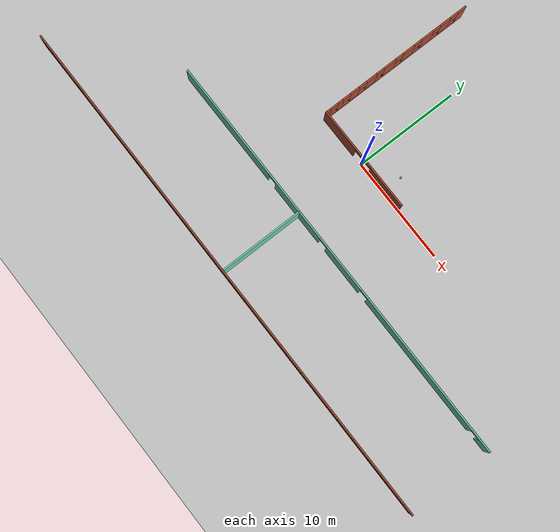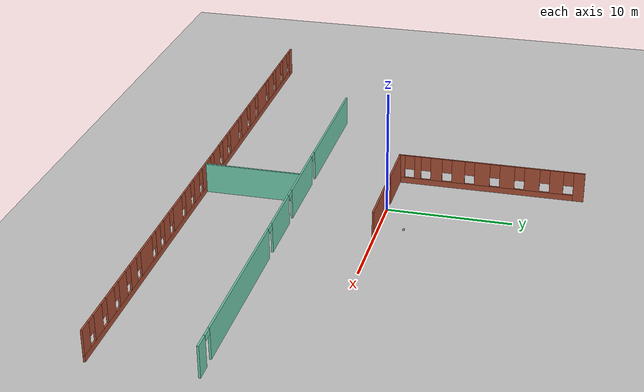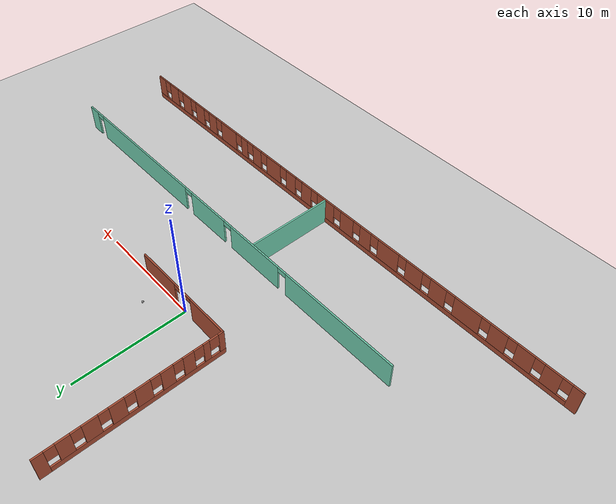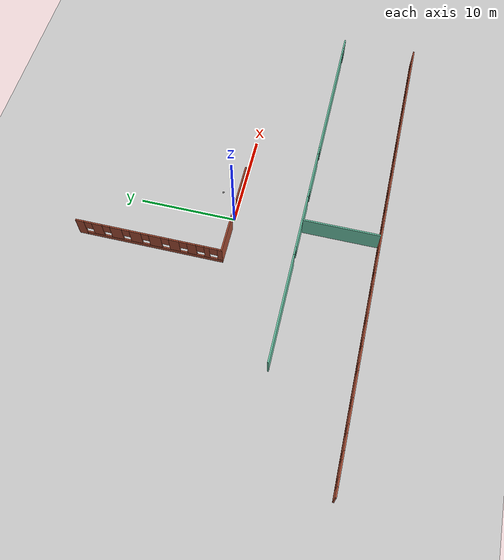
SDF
<sdf version="1.7">
 <world name="default">
  <model name="ground_plane">
   <static>1</static>
   <link name="link">
    <collision name="collision">
     <geometry><plane><normal>0 0 1</normal><size>100 100</size></plane></geometry>
     <surface><friction><ode><mu>100</mu><mu2>50</mu2></ode></friction></surface>
    </collision>
    <visual name="visual">
     <cast_shadows>0</cast_shadows>
     <geometry><plane><normal>0 0 1</normal><size>100 100</size></plane></geometry>
     <material>
      <script><uri>file://media/materials/scripts/gazebo.material</uri><name>Gazebo/Grey</name></script>
     </material>
    </visual>
   </link>
  </model>
  <model name="office">
   <link name="Wall_12">
    <pose>-5 7.5 0 0 -0 -1.5708</pose>
    <visual name="Wall_12_Visual_0">
     <pose>-7.13632 0 1.25 0 -0 0</pose>
     <geometry><box><size>0.877356 0.15 2.5</size></box></geometry>
     <material>
      <script><uri>file://media/materials/scripts/gazebo.material</uri><name>Gazebo/Bricks</name></script>
      <ambient>1 1 1 1</ambient>
     </material>
     <meta><layer>0</layer></meta>
    </visual>
    <collision name="Wall_12_Collision_0">
     <geometry><box><size>0.877356 0.15 2.5</size></box></geometry>
     <pose>-7.13632 0 1.25 0 -0 0</pose>
    </collision>
    <visual name="Wall_12_Visual_1">
     <pose>0.438678 0 0.25 0 -0 0</pose>
     <geometry><box><size>14.2726 0.15 0.5</size></box></geometry>
     <material>
      <script><uri>file://media/materials/scripts/gazebo.material</uri><name>Gazebo/Bricks</name></script>
      <ambient>1 1 1 1</ambient>
     </material>
     <meta><layer>0</layer></meta>
    </visual>
    <collision name="Wall_12_Collision_1">
     <geometry><box><size>14.2726 0.15 0.5</size></box></geometry>
     <pose>0.438678 0 0.25 0 -0 0</pose>
    </collision>
    <visual name="Wall_12_Visual_2">
     <pose>-5.34792 0 1.5 0 -0 0</pose>
     <geometry><box><size>1.09946 0.15 2</size></box></geometry>
     <material>
      <script><uri>file://media/materials/scripts/gazebo.material</uri><name>Gazebo/Bricks</name></script>
      <ambient>1 1 1 1</ambient>
     </material>
     <meta><layer>0</layer></meta>
    </visual>
    <collision name="Wall_12_Collision_2">
     <geometry><box><size>1.09946 0.15 2</size></box></geometry>
     <pose>-5.34792 0 1.5 0 -0 0</pose>
    </collision>
    <visual name="Wall_12_Visual_3">
     <pose>-3.37974 0 1.5 0 -0 0</pose>
     <geometry><box><size>1.2369 0.15 2</size></box></geometry>
     <material>
      <script><uri>file://media/materials/scripts/gazebo.material</uri><name>Gazebo/Bricks</name></script>
      <ambient>1 1 1 1</ambient>
     </material>
     <meta><layer>0</layer></meta>
    </visual>
    <collision name="Wall_12_Collision_3">
     <geometry><box><size>1.2369 0.15 2</size></box></geometry>
     <pose>-3.37974 0 1.5 0 -0 0</pose>
    </collision>
    <visual name="Wall_12_Visual_4">
     <pose>-1.35847 0 1.5 0 -0 0</pose>
     <geometry><box><size>1.20564 0.15 2</size></box></geometry>
     <material>
      <script><uri>file://media/materials/scripts/gazebo.material</uri><name>Gazebo/Bricks</name></script>
      <ambient>1 1 1 1</ambient>
     </material>
     <meta><layer>0</layer></meta>
    </visual>
    <collision name="Wall_12_Collision_4">
     <geometry><box><size>1.20564 0.15 2</size></box></geometry>
     <pose>-1.35847 0 1.5 0 -0 0</pose>
    </collision>
    <visual name="Wall_12_Visual_5">
     <pose>0.676661 0 1.5 0 -0 0</pose>
     <geometry><box><size>1.26463 0.15 2</size></box></geometry>
     <material>
      <script><uri>file://media/materials/scripts/gazebo.material</uri><name>Gazebo/Bricks</name></script>
      <ambient>1 1 1 1</ambient>
     </material>
     <meta><layer>0</layer></meta>
    </visual>
    <collision name="Wall_12_Collision_5">
     <geometry><box><size>1.26463 0.15 2</size></box></geometry>
     <pose>0.676661 0 1.5 0 -0 0</pose>
    </collision>
    <visual name="Wall_12_Visual_6">
     <pose>2.64221 0 1.5 0 -0 0</pose>
     <geometry><box><size>1.06646 0.15 2</size></box></geometry>
     <material>
      <script><uri>file://media/materials/scripts/gazebo.material</uri><name>Gazebo/Bricks</name></script>
      <ambient>1 1 1 1</ambient>
     </material>
     <meta><layer>0</layer></meta>
    </visual>
    <collision name="Wall_12_Collision_6">
     <geometry><box><size>1.06646 0.15 2</size></box></geometry>
     <pose>2.64221 0 1.5 0 -0 0</pose>
    </collision>
    <visual name="Wall_12_Visual_7">
     <pose>4.44911 0 1.5 0 -0 0</pose>
     <geometry><box><size>0.947358 0.15 2</size></box></geometry>
     <material>
      <script><uri>file://media/materials/scripts/gazebo.material</uri><name>Gazebo/Bricks</name></script>
      <ambient>1 1 1 1</ambient>
     </material>
     <meta><layer>0</layer></meta>
    </visual>
    <collision name="Wall_12_Collision_7">
     <geometry><box><size>0.947358 0.15 2</size></box></geometry>
     <pose>4.44911 0 1.5 0 -0 0</pose>
    </collision>
    <visual name="Wall_12_Visual_8">
     <pose>5.99734 0 1.5 0 -0 0</pose>
     <geometry><box><size>0.549094 0.15 2</size></box></geometry>
     <material>
      <script><uri>file://media/materials/scripts/gazebo.material</uri><name>Gazebo/Bricks</name></script>
      <ambient>1 1 1 1</ambient>
     </material>
     <meta><layer>0</layer></meta>
    </visual>
    <collision name="Wall_12_Collision_8">
     <geometry><box><size>0.549094 0.15 2</size></box></geometry>
     <pose>5.99734 0 1.5 0 -0 0</pose>
    </collision>
    <visual name="Wall_12_Visual_9">
     <pose>7.32344 0 1.5 0 -0 0</pose>
     <geometry><box><size>0.503112 0.15 2</size></box></geometry>
     <material>
      <script><uri>file://media/materials/scripts/gazebo.material</uri><name>Gazebo/Bricks</name></script>
      <ambient>1 1 1 1</ambient>
     </material>
     <meta><layer>0</layer></meta>
    </visual>
    <collision name="Wall_12_Collision_9">
     <geometry><box><size>0.503112 0.15 2</size></box></geometry>
     <pose>7.32344 0 1.5 0 -0 0</pose>
    </collision>
    <visual name="Wall_12_Visual_10">
     <pose>-6.29764 0 1.9 0 -0 0</pose>
     <geometry><box><size>0.8 0.15 1.2</size></box></geometry>
     <material>
      <script><uri>file://media/materials/scripts/gazebo.material</uri><name>Gazebo/Bricks</name></script>
      <ambient>1 1 1 1</ambient>
     </material>
     <meta><layer>0</layer></meta>
    </visual>
    <collision name="Wall_12_Collision_10">
     <geometry><box><size>0.8 0.15 1.2</size></box></geometry>
     <pose>-6.29764 0 1.9 0 -0 0</pose>
    </collision>
    <visual name="Wall_12_Visual_11">
     <pose>-4.39819 0 1.9 0 -0 0</pose>
     <geometry><box><size>0.8 0.15 1.2</size></box></geometry>
     <material>
      <script><uri>file://media/materials/scripts/gazebo.material</uri><name>Gazebo/Bricks</name></script>
      <ambient>1 1 1 1</ambient>
     </material>
     <meta><layer>0</layer></meta>
    </visual>
    <collision name="Wall_12_Collision_11">
     <geometry><box><size>0.8 0.15 1.2</size></box></geometry>
     <pose>-4.39819 0 1.9 0 -0 0</pose>
    </collision>
    <visual name="Wall_12_Visual_12">
     <pose>-2.36129 0 1.9 0 -0 0</pose>
     <geometry><box><size>0.8 0.15 1.2</size></box></geometry>
     <material>
      <script><uri>file://media/materials/scripts/gazebo.material</uri><name>Gazebo/Bricks</name></script>
      <ambient>1 1 1 1</ambient>
     </material>
     <meta><layer>0</layer></meta>
    </visual>
    <collision name="Wall_12_Collision_12">
     <geometry><box><size>0.8 0.15 1.2</size></box></geometry>
     <pose>-2.36129 0 1.9 0 -0 0</pose>
    </collision>
    <visual name="Wall_12_Visual_13">
     <pose>-0.355653 0 1.9 0 -0 0</pose>
     <geometry><box><size>0.8 0.15 1.2</size></box></geometry>
     <material>
      <script><uri>file://media/materials/scripts/gazebo.material</uri><name>Gazebo/Bricks</name></script>
      <ambient>1 1 1 1</ambient>
     </material>
     <meta><layer>0</layer></meta>
    </visual>
    <collision name="Wall_12_Collision_13">
     <geometry><box><size>0.8 0.15 1.2</size></box></geometry>
     <pose>-0.355653 0 1.9 0 -0 0</pose>
    </collision>
    <visual name="Wall_12_Visual_14">
     <pose>1.70897 0 1.9 0 -0 0</pose>
     <geometry><box><size>0.8 0.15 1.2</size></box></geometry>
     <material>
      <script><uri>file://media/materials/scripts/gazebo.material</uri><name>Gazebo/Bricks</name></script>
      <ambient>1 1 1 1</ambient>
     </material>
     <meta><layer>0</layer></meta>
    </visual>
    <collision name="Wall_12_Collision_14">
     <geometry><box><size>0.8 0.15 1.2</size></box></geometry>
     <pose>1.70897 0 1.9 0 -0 0</pose>
    </collision>
    <visual name="Wall_12_Visual_15">
     <pose>3.57544 0 1.9 0 -0 0</pose>
     <geometry><box><size>0.8 0.15 1.2</size></box></geometry>
     <material>
      <script><uri>file://media/materials/scripts/gazebo.material</uri><name>Gazebo/Bricks</name></script>
      <ambient>1 1 1 1</ambient>
     </material>
     <meta><layer>0</layer></meta>
    </visual>
    <collision name="Wall_12_Collision_15">
     <geometry><box><size>0.8 0.15 1.2</size></box></geometry>
     <pose>3.57544 0 1.9 0 -0 0</pose>
    </collision>
    <visual name="Wall_12_Visual_16">
     <pose>5.32279 0 1.9 0 -0 0</pose>
     <geometry><box><size>0.8 0.15 1.2</size></box></geometry>
     <material>
      <script><uri>file://media/materials/scripts/gazebo.material</uri><name>Gazebo/Bricks</name></script>
      <ambient>1 1 1 1</ambient>
     </material>
     <meta><layer>0</layer></meta>
    </visual>
    <collision name="Wall_12_Collision_16">
     <geometry><box><size>0.8 0.15 1.2</size></box></geometry>
     <pose>5.32279 0 1.9 0 -0 0</pose>
    </collision>
    <visual name="Wall_12_Visual_17">
     <pose>6.67189 0 1.9 0 -0 0</pose>
     <geometry><box><size>0.8 0.15 1.2</size></box></geometry>
     <material>
      <script><uri>file://media/materials/scripts/gazebo.material</uri><name>Gazebo/Bricks</name></script>
      <ambient>1 1 1 1</ambient>
     </material>
     <meta><layer>0</layer></meta>
    </visual>
    <collision name="Wall_12_Collision_17">
     <geometry><box><size>0.8 0.15 1.2</size></box></geometry>
     <pose>6.67189 0 1.9 0 -0 0</pose>
    </collision>
   </link>
   <link name="Wall_14">
    <visual name="Wall_14_Visual_0">
     <pose>-3.05414 0 1.25 0 -0 0</pose>
     <geometry><box><size>4.04172 0.15 2.5</size></box></geometry>
     <material>
      <script><uri>file://media/materials/scripts/gazebo.material</uri><name>Gazebo/Bricks</name></script>
      <ambient>1 1 1 1</ambient>
     </material>
     <meta><layer>0</layer></meta>
    </visual>
    <collision name="Wall_14_Collision_0">
     <geometry><box><size>4.04172 0.15 2.5</size></box></geometry>
     <pose>-3.05414 0 1.25 0 -0 0</pose>
    </collision>
    <visual name="Wall_14_Visual_1">
     <pose>3.02086 0 1.25 0 -0 0</pose>
     <geometry><box><size>4.10827 0.15 2.5</size></box></geometry>
     <material>
      <script><uri>file://media/materials/scripts/gazebo.material</uri><name>Gazebo/Bricks</name></script>
      <ambient>1 1 1 1</ambient>
     </material>
     <meta><layer>0</layer></meta>
    </visual>
    <collision name="Wall_14_Collision_1">
     <geometry><box><size>4.10827 0.15 2.5</size></box></geometry>
     <pose>3.02086 0 1.25 0 -0 0</pose>
    </collision>
    <visual name="Wall_14_Visual_2">
     <pose>-0.033275 0 2.25 0 -0 0</pose>
     <geometry><box><size>2 0.15 0.5</size></box></geometry>
     <material>
      <script><uri>file://media/materials/scripts/gazebo.material</uri><name>Gazebo/Bricks</name></script>
      <ambient>1 1 1 1</ambient>
     </material>
     <meta><layer>0</layer></meta>
    </visual>
    <collision name="Wall_14_Collision_2">
     <geometry><box><size>2 0.15 0.5</size></box></geometry>
     <pose>-0.033275 0 2.25 0 -0 0</pose>
    </collision>
   </link>
   <link name="Wall_2">
    <pose>0 -15 0 0 -0 0</pose>
    <visual name="Wall_2_Visual_0">
     <pose>-24.6249 0 1.25 0 -0 0</pose>
     <geometry><box><size>0.900286 0.15 2.5</size></box></geometry>
     <material>
      <script><uri>file://media/materials/scripts/gazebo.material</uri><name>Gazebo/Bricks</name></script>
      <ambient>1 1 1 1</ambient>
     </material>
     <meta><layer>0</layer></meta>
    </visual>
    <collision name="Wall_2_Collision_0">
     <geometry><box><size>0.900286 0.15 2.5</size></box></geometry>
     <pose>-24.6249 0 1.25 0 -0 0</pose>
    </collision>
    <visual name="Wall_2_Visual_1">
     <pose>0.450143 0 0.25 0 -0 0</pose>
     <geometry><box><size>49.2497 0.15 0.5</size></box></geometry>
     <material>
      <script><uri>file://media/materials/scripts/gazebo.material</uri><name>Gazebo/Bricks</name></script>
      <ambient>1 1 1 1</ambient>
     </material>
     <meta><layer>0</layer></meta>
    </visual>
    <collision name="Wall_2_Collision_1">
     <geometry><box><size>49.2497 0.15 0.5</size></box></geometry>
     <pose>0.450143 0 0.25 0 -0 0</pose>
    </collision>
    <visual name="Wall_2_Visual_2">
     <pose>-22.6554 0 1.5 0 -0 0</pose>
     <geometry><box><size>1.43865 0.15 2</size></box></geometry>
     <material>
      <script><uri>file://media/materials/scripts/gazebo.material</uri><name>Gazebo/Bricks</name></script>
      <ambient>1 1 1 1</ambient>
     </material>
     <meta><layer>0</layer></meta>
    </visual>
    <collision name="Wall_2_Collision_2">
     <geometry><box><size>1.43865 0.15 2</size></box></geometry>
     <pose>-22.6554 0 1.5 0 -0 0</pose>
    </collision>
    <visual name="Wall_2_Visual_3">
     <pose>-20.3828 0 1.5 0 -0 0</pose>
     <geometry><box><size>1.50648 0.15 2</size></box></geometry>
     <material>
      <script><uri>file://media/materials/scripts/gazebo.material</uri><name>Gazebo/Bricks</name></script>
      <ambient>1 1 1 1</ambient>
     </material>
     <meta><layer>0</layer></meta>
    </visual>
    <collision name="Wall_2_Collision_3">
     <geometry><box><size>1.50648 0.15 2</size></box></geometry>
     <pose>-20.3828 0 1.5 0 -0 0</pose>
    </collision>
    <visual name="Wall_2_Visual_4">
     <pose>-18.0424 0 1.5 0 -0 0</pose>
     <geometry><box><size>1.57432 0.15 2</size></box></geometry>
     <material>
      <script><uri>file://media/materials/scripts/gazebo.material</uri><name>Gazebo/Bricks</name></script>
      <ambient>1 1 1 1</ambient>
     </material>
     <meta><layer>0</layer></meta>
    </visual>
    <collision name="Wall_2_Collision_4">
     <geometry><box><size>1.57432 0.15 2</size></box></geometry>
     <pose>-18.0424 0 1.5 0 -0 0</pose>
    </collision>
    <visual name="Wall_2_Visual_5">
     <pose>-15.1932 0 1.5 0 -0 0</pose>
     <geometry><box><size>2.52405 0.15 2</size></box></geometry>
     <material>
      <script><uri>file://media/materials/scripts/gazebo.material</uri><name>Gazebo/Bricks</name></script>
      <ambient>1 1 1 1</ambient>
     </material>
     <meta><layer>0</layer></meta>
    </visual>
    <collision name="Wall_2_Collision_5">
     <geometry><box><size>2.52405 0.15 2</size></box></geometry>
     <pose>-15.1932 0 1.5 0 -0 0</pose>
    </collision>
    <visual name="Wall_2_Visual_6">
     <pose>-12.3441 0 1.5 0 -0 0</pose>
     <geometry><box><size>1.57432 0.15 2</size></box></geometry>
     <material>
      <script><uri>file://media/materials/scripts/gazebo.material</uri><name>Gazebo/Bricks</name></script>
      <ambient>1 1 1 1</ambient>
     </material>
     <meta><layer>0</layer></meta>
    </visual>
    <collision name="Wall_2_Collision_6">
     <geometry><box><size>1.57432 0.15 2</size></box></geometry>
     <pose>-12.3441 0 1.5 0 -0 0</pose>
    </collision>
    <visual name="Wall_2_Visual_7">
     <pose>-9.90189 0 1.5 0 -0 0</pose>
     <geometry><box><size>1.71 0.15 2</size></box></geometry>
     <material>
      <script><uri>file://media/materials/scripts/gazebo.material</uri><name>Gazebo/Bricks</name></script>
      <ambient>1 1 1 1</ambient>
     </material>
     <meta><layer>0</layer></meta>
    </visual>
    <collision name="Wall_2_Collision_7">
     <geometry><box><size>1.71 0.15 2</size></box></geometry>
     <pose>-9.90189 0 1.5 0 -0 0</pose>
    </collision>
    <visual name="Wall_2_Visual_8">
     <pose>-7.12054 0 1.5 0 -0 0</pose>
     <geometry><box><size>2.2527 0.15 2</size></box></geometry>
     <material>
      <script><uri>file://media/materials/scripts/gazebo.material</uri><name>Gazebo/Bricks</name></script>
      <ambient>1 1 1 1</ambient>
     </material>
     <meta><layer>0</layer></meta>
    </visual>
    <collision name="Wall_2_Collision_8">
     <geometry><box><size>2.2527 0.15 2</size></box></geometry>
     <pose>-7.12054 0 1.5 0 -0 0</pose>
    </collision>
    <visual name="Wall_2_Visual_9">
     <pose>-4.57663 0 1.5 0 -0 0</pose>
     <geometry><box><size>1.23513 0.15 2</size></box></geometry>
     <material>
      <script><uri>file://media/materials/scripts/gazebo.material</uri><name>Gazebo/Bricks</name></script>
      <ambient>1 1 1 1</ambient>
     </material>
     <meta><layer>0</layer></meta>
    </visual>
    <collision name="Wall_2_Collision_9">
     <geometry><box><size>1.23513 0.15 2</size></box></geometry>
     <pose>-4.57663 0 1.5 0 -0 0</pose>
    </collision>
    <visual name="Wall_2_Visual_10">
     <pose>-2.40582 0 1.5 0 -0 0</pose>
     <geometry><box><size>1.50648 0.15 2</size></box></geometry>
     <material>
      <script><uri>file://media/materials/scripts/gazebo.material</uri><name>Gazebo/Bricks</name></script>
      <ambient>1 1 1 1</ambient>
     </material>
     <meta><layer>0</layer></meta>
    </visual>
    <collision name="Wall_2_Collision_10">
     <geometry><box><size>1.50648 0.15 2</size></box></geometry>
     <pose>-2.40582 0 1.5 0 -0 0</pose>
    </collision>
    <visual name="Wall_2_Visual_11">
     <pose>0.172015 0 1.5 0 -0 0</pose>
     <geometry><box><size>2.04919 0.15 2</size></box></geometry>
     <material>
      <script><uri>file://media/materials/scripts/gazebo.material</uri><name>Gazebo/Bricks</name></script>
      <ambient>1 1 1 1</ambient>
     </material>
     <meta><layer>0</layer></meta>
    </visual>
    <collision name="Wall_2_Collision_11">
     <geometry><box><size>2.04919 0.15 2</size></box></geometry>
     <pose>0.172015 0 1.5 0 -0 0</pose>
    </collision>
    <visual name="Wall_2_Visual_12">
     <pose>2.61417 0 1.5 0 -0 0</pose>
     <geometry><box><size>1.23513 0.15 2</size></box></geometry>
     <material>
      <script><uri>file://media/materials/scripts/gazebo.material</uri><name>Gazebo/Bricks</name></script>
      <ambient>1 1 1 1</ambient>
     </material>
     <meta><layer>0</layer></meta>
    </visual>
    <collision name="Wall_2_Collision_12">
     <geometry><box><size>1.23513 0.15 2</size></box></geometry>
     <pose>2.61417 0 1.5 0 -0 0</pose>
    </collision>
    <visual name="Wall_2_Visual_13">
     <pose>4.64931 0 1.5 0 -0 0</pose>
     <geometry><box><size>1.23513 0.15 2</size></box></geometry>
     <material>
      <script><uri>file://media/materials/scripts/gazebo.material</uri><name>Gazebo/Bricks</name></script>
      <ambient>1 1 1 1</ambient>
     </material>
     <meta><layer>0</layer></meta>
    </visual>
    <collision name="Wall_2_Collision_13">
     <geometry><box><size>1.23513 0.15 2</size></box></geometry>
     <pose>4.64931 0 1.5 0 -0 0</pose>
    </collision>
    <visual name="Wall_2_Visual_14">
     <pose>7.02363 0 1.5 0 -0 0</pose>
     <geometry><box><size>1.91351 0.15 2</size></box></geometry>
     <material>
      <script><uri>file://media/materials/scripts/gazebo.material</uri><name>Gazebo/Bricks</name></script>
      <ambient>1 1 1 1</ambient>
     </material>
     <meta><layer>0</layer></meta>
    </visual>
    <collision name="Wall_2_Collision_14">
     <geometry><box><size>1.91351 0.15 2</size></box></geometry>
     <pose>7.02363 0 1.5 0 -0 0</pose>
    </collision>
    <visual name="Wall_2_Visual_15">
     <pose>9.36403 0 1.5 0 -0 0</pose>
     <geometry><box><size>1.16729 0.15 2</size></box></geometry>
     <material>
      <script><uri>file://media/materials/scripts/gazebo.material</uri><name>Gazebo/Bricks</name></script>
      <ambient>1 1 1 1</ambient>
     </material>
     <meta><layer>0</layer></meta>
    </visual>
    <collision name="Wall_2_Collision_15">
     <geometry><box><size>1.16729 0.15 2</size></box></geometry>
     <pose>9.36403 0 1.5 0 -0 0</pose>
    </collision>
    <visual name="Wall_2_Visual_16">
     <pose>11.1957 0 1.5 0 -0 0</pose>
     <geometry><box><size>0.895944 0.15 2</size></box></geometry>
     <material>
      <script><uri>file://media/materials/scripts/gazebo.material</uri><name>Gazebo/Bricks</name></script>
      <ambient>1 1 1 1</ambient>
     </material>
     <meta><layer>0</layer></meta>
    </visual>
    <collision name="Wall_2_Collision_16">
     <geometry><box><size>0.895944 0.15 2</size></box></geometry>
     <pose>11.1957 0 1.5 0 -0 0</pose>
    </collision>
    <visual name="Wall_2_Visual_17">
     <pose>13.57 0 1.5 0 -0 0</pose>
     <geometry><box><size>2.2527 0.15 2</size></box></geometry>
     <material>
      <script><uri>file://media/materials/scripts/gazebo.material</uri><name>Gazebo/Bricks</name></script>
      <ambient>1 1 1 1</ambient>
     </material>
     <meta><layer>0</layer></meta>
    </visual>
    <collision name="Wall_2_Collision_17">
     <geometry><box><size>2.2527 0.15 2</size></box></geometry>
     <pose>13.57 0 1.5 0 -0 0</pose>
    </collision>
    <visual name="Wall_2_Visual_18">
     <pose>16.08 0 1.5 0 -0 0</pose>
     <geometry><box><size>1.16729 0.15 2</size></box></geometry>
     <material>
      <script><uri>file://media/materials/scripts/gazebo.material</uri><name>Gazebo/Bricks</name></script>
      <ambient>1 1 1 1</ambient>
     </material>
     <meta><layer>0</layer></meta>
    </visual>
    <collision name="Wall_2_Collision_18">
     <geometry><box><size>1.16729 0.15 2</size></box></geometry>
     <pose>16.08 0 1.5 0 -0 0</pose>
    </collision>
    <visual name="Wall_2_Visual_19">
     <pose>18.149 0 1.5 0 -0 0</pose>
     <geometry><box><size>1.37081 0.15 2</size></box></geometry>
     <material>
      <script><uri>file://media/materials/scripts/gazebo.material</uri><name>Gazebo/Bricks</name></script>
      <ambient>1 1 1 1</ambient>
     </material>
     <meta><layer>0</layer></meta>
    </visual>
    <collision name="Wall_2_Collision_19">
     <geometry><box><size>1.37081 0.15 2</size></box></geometry>
     <pose>18.149 0 1.5 0 -0 0</pose>
    </collision>
    <visual name="Wall_2_Visual_20">
     <pose>20.3198 0 1.5 0 -0 0</pose>
     <geometry><box><size>1.37081 0.15 2</size></box></geometry>
     <material>
      <script><uri>file://media/materials/scripts/gazebo.material</uri><name>Gazebo/Bricks</name></script>
      <ambient>1 1 1 1</ambient>
     </material>
     <meta><layer>0</layer></meta>
    </visual>
    <collision name="Wall_2_Collision_20">
     <geometry><box><size>1.37081 0.15 2</size></box></geometry>
     <pose>20.3198 0 1.5 0 -0 0</pose>
    </collision>
    <visual name="Wall_2_Visual_21">
     <pose>22.4906 0 1.5 0 -0 0</pose>
     <geometry><box><size>1.37081 0.15 2</size></box></geometry>
     <material>
      <script><uri>file://media/materials/scripts/gazebo.material</uri><name>Gazebo/Bricks</name></script>
      <ambient>1 1 1 1</ambient>
     </material>
     <meta><layer>0</layer></meta>
    </visual>
    <collision name="Wall_2_Collision_21">
     <geometry><box><size>1.37081 0.15 2</size></box></geometry>
     <pose>22.4906 0 1.5 0 -0 0</pose>
    </collision>
    <visual name="Wall_2_Visual_22">
     <pose>24.5255 0 1.5 0 -0 0</pose>
     <geometry><box><size>1.09896 0.15 2</size></box></geometry>
     <material>
      <script><uri>file://media/materials/scripts/gazebo.material</uri><name>Gazebo/Bricks</name></script>
      <ambient>1 1 1 1</ambient>
     </material>
     <meta><layer>0</layer></meta>
    </visual>
    <collision name="Wall_2_Collision_22">
     <geometry><box><size>1.09896 0.15 2</size></box></geometry>
     <pose>24.5255 0 1.5 0 -0 0</pose>
    </collision>
    <visual name="Wall_2_Visual_23">
     <pose>-23.7747 0 1.9 0 -0 0</pose>
     <geometry><box><size>0.8 0.15 1.2</size></box></geometry>
     <material>
      <script><uri>file://media/materials/scripts/gazebo.material</uri><name>Gazebo/Bricks</name></script>
      <ambient>1 1 1 1</ambient>
     </material>
     <meta><layer>0</layer></meta>
    </visual>
    <collision name="Wall_2_Collision_23">
     <geometry><box><size>0.8 0.15 1.2</size></box></geometry>
     <pose>-23.7747 0 1.9 0 -0 0</pose>
    </collision>
    <visual name="Wall_2_Visual_24">
     <pose>-21.5361 0 1.9 0 -0 0</pose>
     <geometry><box><size>0.8 0.15 1.2</size></box></geometry>
     <material>
      <script><uri>file://media/materials/scripts/gazebo.material</uri><name>Gazebo/Bricks</name></script>
      <ambient>1 1 1 1</ambient>
     </material>
     <meta><layer>0</layer></meta>
    </visual>
    <collision name="Wall_2_Collision_24">
     <geometry><box><size>0.8 0.15 1.2</size></box></geometry>
     <pose>-21.5361 0 1.9 0 -0 0</pose>
    </collision>
    <visual name="Wall_2_Visual_25">
     <pose>-19.2296 0 1.9 0 -0 0</pose>
     <geometry><box><size>0.8 0.15 1.2</size></box></geometry>
     <material>
      <script><uri>file://media/materials/scripts/gazebo.material</uri><name>Gazebo/Bricks</name></script>
      <ambient>1 1 1 1</ambient>
     </material>
     <meta><layer>0</layer></meta>
    </visual>
    <collision name="Wall_2_Collision_25">
     <geometry><box><size>0.8 0.15 1.2</size></box></geometry>
     <pose>-19.2296 0 1.9 0 -0 0</pose>
    </collision>
    <visual name="Wall_2_Visual_26">
     <pose>-16.8553 0 1.9 0 -0 0</pose>
     <geometry><box><size>0.8 0.15 1.2</size></box></geometry>
     <material>
      <script><uri>file://media/materials/scripts/gazebo.material</uri><name>Gazebo/Bricks</name></script>
      <ambient>1 1 1 1</ambient>
     </material>
     <meta><layer>0</layer></meta>
    </visual>
    <collision name="Wall_2_Collision_26">
     <geometry><box><size>0.8 0.15 1.2</size></box></geometry>
     <pose>-16.8553 0 1.9 0 -0 0</pose>
    </collision>
    <visual name="Wall_2_Visual_27">
     <pose>-13.5312 0 1.9 0 -0 0</pose>
     <geometry><box><size>0.8 0.15 1.2</size></box></geometry>
     <material>
      <script><uri>file://media/materials/scripts/gazebo.material</uri><name>Gazebo/Bricks</name></script>
      <ambient>1 1 1 1</ambient>
     </material>
     <meta><layer>0</layer></meta>
    </visual>
    <collision name="Wall_2_Collision_27">
     <geometry><box><size>0.8 0.15 1.2</size></box></geometry>
     <pose>-13.5312 0 1.9 0 -0 0</pose>
    </collision>
    <visual name="Wall_2_Visual_28">
     <pose>-11.1569 0 1.9 0 -0 0</pose>
     <geometry><box><size>0.8 0.15 1.2</size></box></geometry>
     <material>
      <script><uri>file://media/materials/scripts/gazebo.material</uri><name>Gazebo/Bricks</name></script>
      <ambient>1 1 1 1</ambient>
     </material>
     <meta><layer>0</layer></meta>
    </visual>
    <collision name="Wall_2_Collision_28">
     <geometry><box><size>0.8 0.15 1.2</size></box></geometry>
     <pose>-11.1569 0 1.9 0 -0 0</pose>
    </collision>
    <visual name="Wall_2_Visual_29">
     <pose>-8.64689 0 1.9 0 -0 0</pose>
     <geometry><box><size>0.8 0.15 1.2</size></box></geometry>
     <material>
      <script><uri>file://media/materials/scripts/gazebo.material</uri><name>Gazebo/Bricks</name></script>
      <ambient>1 1 1 1</ambient>
     </material>
     <meta><layer>0</layer></meta>
    </visual>
    <collision name="Wall_2_Collision_29">
     <geometry><box><size>0.8 0.15 1.2</size></box></geometry>
     <pose>-8.64689 0 1.9 0 -0 0</pose>
    </collision>
    <visual name="Wall_2_Visual_30">
     <pose>-5.59419 0 1.9 0 -0 0</pose>
     <geometry><box><size>0.8 0.15 1.2</size></box></geometry>
     <material>
      <script><uri>file://media/materials/scripts/gazebo.material</uri><name>Gazebo/Bricks</name></script>
      <ambient>1 1 1 1</ambient>
     </material>
     <meta><layer>0</layer></meta>
    </visual>
    <collision name="Wall_2_Collision_30">
     <geometry><box><size>0.8 0.15 1.2</size></box></geometry>
     <pose>-5.59419 0 1.9 0 -0 0</pose>
    </collision>
    <visual name="Wall_2_Visual_31">
     <pose>-3.55906 0 1.9 0 -0 0</pose>
     <geometry><box><size>0.8 0.15 1.2</size></box></geometry>
     <material>
      <script><uri>file://media/materials/scripts/gazebo.material</uri><name>Gazebo/Bricks</name></script>
      <ambient>1 1 1 1</ambient>
     </material>
     <meta><layer>0</layer></meta>
    </visual>
    <collision name="Wall_2_Collision_31">
     <geometry><box><size>0.8 0.15 1.2</size></box></geometry>
     <pose>-3.55906 0 1.9 0 -0 0</pose>
    </collision>
    <visual name="Wall_2_Visual_32">
     <pose>-1.25258 0 1.9 0 -0 0</pose>
     <geometry><box><size>0.8 0.15 1.2</size></box></geometry>
     <material>
      <script><uri>file://media/materials/scripts/gazebo.material</uri><name>Gazebo/Bricks</name></script>
      <ambient>1 1 1 1</ambient>
     </material>
     <meta><layer>0</layer></meta>
    </visual>
    <collision name="Wall_2_Collision_32">
     <geometry><box><size>0.8 0.15 1.2</size></box></geometry>
     <pose>-1.25258 0 1.9 0 -0 0</pose>
    </collision>
    <visual name="Wall_2_Visual_33">
     <pose>1.59661 0 1.9 0 -0 0</pose>
     <geometry><box><size>0.8 0.15 1.2</size></box></geometry>
     <material>
      <script><uri>file://media/materials/scripts/gazebo.material</uri><name>Gazebo/Bricks</name></script>
      <ambient>1 1 1 1</ambient>
     </material>
     <meta><layer>0</layer></meta>
    </visual>
    <collision name="Wall_2_Collision_33">
     <geometry><box><size>0.8 0.15 1.2</size></box></geometry>
     <pose>1.59661 0 1.9 0 -0 0</pose>
    </collision>
    <visual name="Wall_2_Visual_34">
     <pose>3.63174 0 1.9 0 -0 0</pose>
     <geometry><box><size>0.8 0.15 1.2</size></box></geometry>
     <material>
      <script><uri>file://media/materials/scripts/gazebo.material</uri><name>Gazebo/Bricks</name></script>
      <ambient>1 1 1 1</ambient>
     </material>
     <meta><layer>0</layer></meta>
    </visual>
    <collision name="Wall_2_Collision_34">
     <geometry><box><size>0.8 0.15 1.2</size></box></geometry>
     <pose>3.63174 0 1.9 0 -0 0</pose>
    </collision>
    <visual name="Wall_2_Visual_35">
     <pose>5.66687 0 1.9 0 -0 0</pose>
     <geometry><box><size>0.8 0.15 1.2</size></box></geometry>
     <material>
      <script><uri>file://media/materials/scripts/gazebo.material</uri><name>Gazebo/Bricks</name></script>
      <ambient>1 1 1 1</ambient>
     </material>
     <meta><layer>0</layer></meta>
    </visual>
    <collision name="Wall_2_Collision_35">
     <geometry><box><size>0.8 0.15 1.2</size></box></geometry>
     <pose>5.66687 0 1.9 0 -0 0</pose>
    </collision>
    <visual name="Wall_2_Visual_36">
     <pose>8.38038 0 1.9 0 -0 0</pose>
     <geometry><box><size>0.8 0.15 1.2</size></box></geometry>
     <material>
      <script><uri>file://media/materials/scripts/gazebo.material</uri><name>Gazebo/Bricks</name></script>
      <ambient>1 1 1 1</ambient>
     </material>
     <meta><layer>0</layer></meta>
    </visual>
    <collision name="Wall_2_Collision_36">
     <geometry><box><size>0.8 0.15 1.2</size></box></geometry>
     <pose>8.38038 0 1.9 0 -0 0</pose>
    </collision>
    <visual name="Wall_2_Visual_37">
     <pose>10.3477 0 1.9 0 -0 0</pose>
     <geometry><box><size>0.8 0.15 1.2</size></box></geometry>
     <material>
      <script><uri>file://media/materials/scripts/gazebo.material</uri><name>Gazebo/Bricks</name></script>
      <ambient>1 1 1 1</ambient>
     </material>
     <meta><layer>0</layer></meta>
    </visual>
    <collision name="Wall_2_Collision_37">
     <geometry><box><size>0.8 0.15 1.2</size></box></geometry>
     <pose>10.3477 0 1.9 0 -0 0</pose>
    </collision>
    <visual name="Wall_2_Visual_38">
     <pose>12.0436 0 1.9 0 -0 0</pose>
     <geometry><box><size>0.8 0.15 1.2</size></box></geometry>
     <material>
      <script><uri>file://media/materials/scripts/gazebo.material</uri><name>Gazebo/Bricks</name></script>
      <ambient>1 1 1 1</ambient>
     </material>
     <meta><layer>0</layer></meta>
    </visual>
    <collision name="Wall_2_Collision_38">
     <geometry><box><size>0.8 0.15 1.2</size></box></geometry>
     <pose>12.0436 0 1.9 0 -0 0</pose>
    </collision>
    <visual name="Wall_2_Visual_39">
     <pose>15.0963 0 1.9 0 -0 0</pose>
     <geometry><box><size>0.8 0.15 1.2</size></box></geometry>
     <material>
      <script><uri>file://media/materials/scripts/gazebo.material</uri><name>Gazebo/Bricks</name></script>
      <ambient>1 1 1 1</ambient>
     </material>
     <meta><layer>0</layer></meta>
    </visual>
    <collision name="Wall_2_Collision_39">
     <geometry><box><size>0.8 0.15 1.2</size></box></geometry>
     <pose>15.0963 0 1.9 0 -0 0</pose>
    </collision>
    <visual name="Wall_2_Visual_40">
     <pose>17.0636 0 1.9 0 -0 0</pose>
     <geometry><box><size>0.8 0.15 1.2</size></box></geometry>
     <material>
      <script><uri>file://media/materials/scripts/gazebo.material</uri><name>Gazebo/Bricks</name></script>
      <ambient>1 1 1 1</ambient>
     </material>
     <meta><layer>0</layer></meta>
    </visual>
    <collision name="Wall_2_Collision_40">
     <geometry><box><size>0.8 0.15 1.2</size></box></geometry>
     <pose>17.0636 0 1.9 0 -0 0</pose>
    </collision>
    <visual name="Wall_2_Visual_41">
     <pose>19.2344 0 1.9 0 -0 0</pose>
     <geometry><box><size>0.8 0.15 1.2</size></box></geometry>
     <material>
      <script><uri>file://media/materials/scripts/gazebo.material</uri><name>Gazebo/Bricks</name></script>
      <ambient>1 1 1 1</ambient>
     </material>
     <meta><layer>0</layer></meta>
    </visual>
    <collision name="Wall_2_Collision_41">
     <geometry><box><size>0.8 0.15 1.2</size></box></geometry>
     <pose>19.2344 0 1.9 0 -0 0</pose>
    </collision>
    <visual name="Wall_2_Visual_42">
     <pose>21.4052 0 1.9 0 -0 0</pose>
     <geometry><box><size>0.8 0.15 1.2</size></box></geometry>
     <material>
      <script><uri>file://media/materials/scripts/gazebo.material</uri><name>Gazebo/Bricks</name></script>
      <ambient>1 1 1 1</ambient>
     </material>
     <meta><layer>0</layer></meta>
    </visual>
    <collision name="Wall_2_Collision_42">
     <geometry><box><size>0.8 0.15 1.2</size></box></geometry>
     <pose>21.4052 0 1.9 0 -0 0</pose>
    </collision>
    <visual name="Wall_2_Visual_43">
     <pose>23.576 0 1.9 0 -0 0</pose>
     <geometry><box><size>0.8 0.15 1.2</size></box></geometry>
     <material>
      <script><uri>file://media/materials/scripts/gazebo.material</uri><name>Gazebo/Bricks</name></script>
      <ambient>1 1 1 1</ambient>
     </material>
     <meta><layer>0</layer></meta>
    </visual>
    <collision name="Wall_2_Collision_43">
     <geometry><box><size>0.8 0.15 1.2</size></box></geometry>
     <pose>23.576 0 1.9 0 -0 0</pose>
    </collision>
   </link>
   <link name="Wall_28">
    <pose>4.979 -7 0 0 -0 0</pose>
    <visual name="Wall_28_Visual_0">
     <pose>-14.4234 0 1.25 0 -0 0</pose>
     <geometry><box><size>11.2613 0.15 2.5</size></box></geometry>
     <material>
      <script><uri>file://media/materials/scripts/gazebo.material</uri><name>Gazebo/Grey</name></script>
      <ambient>0.435294 0.796078 0.67451 1</ambient>
     </material>
     <meta><layer>0</layer></meta>
    </visual>
    <collision name="Wall_28_Collision_0">
     <geometry><box><size>11.2613 0.15 2.5</size></box></geometry>
     <pose>-14.4234 0 1.25 0 -0 0</pose>
    </collision>
    <visual name="Wall_28_Visual_1">
     <pose>-4.92131 0 1.25 0 -0 0</pose>
     <geometry><box><size>5.94276 0.15 2.5</size></box></geometry>
     <material>
      <script><uri>file://media/materials/scripts/gazebo.material</uri><name>Gazebo/Grey</name></script>
      <ambient>0.435294 0.796078 0.67451 1</ambient>
     </material>
     <meta><layer>0</layer></meta>
    </visual>
    <collision name="Wall_28_Collision_1">
     <geometry><box><size>5.94276 0.15 2.5</size></box></geometry>
     <pose>-4.92131 0 1.25 0 -0 0</pose>
    </collision>
    <visual name="Wall_28_Visual_2">
     <pose>1.21358 0 1.25 0 -0 0</pose>
     <geometry><box><size>4.52702 0.15 2.5</size></box></geometry>
     <material>
      <script><uri>file://media/materials/scripts/gazebo.material</uri><name>Gazebo/Grey</name></script>
      <ambient>0.435294 0.796078 0.67451 1</ambient>
     </material>
     <meta><layer>0</layer></meta>
    </visual>
    <collision name="Wall_28_Collision_2">
     <geometry><box><size>4.52702 0.15 2.5</size></box></geometry>
     <pose>1.21358 0 1.25 0 -0 0</pose>
    </collision>
    <visual name="Wall_28_Visual_3">
     <pose>11.1238 0 1.25 0 -0 0</pose>
     <geometry><box><size>13.4934 0.15 2.5</size></box></geometry>
     <material>
      <script><uri>file://media/materials/scripts/gazebo.material</uri><name>Gazebo/Grey</name></script>
      <ambient>0.435294 0.796078 0.67451 1</ambient>
     </material>
     <meta><layer>0</layer></meta>
    </visual>
    <collision name="Wall_28_Collision_3">
     <geometry><box><size>13.4934 0.15 2.5</size></box></geometry>
     <pose>11.1238 0 1.25 0 -0 0</pose>
    </collision>
    <visual name="Wall_28_Visual_4">
     <pose>19.4122 0 1.25 0 -0 0</pose>
     <geometry><box><size>1.28351 0.15 2.5</size></box></geometry>
     <material>
      <script><uri>file://media/materials/scripts/gazebo.material</uri><name>Gazebo/Grey</name></script>
      <ambient>0.435294 0.796078 0.67451 1</ambient>
     </material>
     <meta><layer>0</layer></meta>
    </visual>
    <collision name="Wall_28_Collision_4">
     <geometry><box><size>1.28351 0.15 2.5</size></box></geometry>
     <pose>19.4122 0 1.25 0 -0 0</pose>
    </collision>
    <visual name="Wall_28_Visual_5">
     <pose>-8.3427 0 2.25 0 -0 0</pose>
     <geometry><box><size>0.9 0.15 0.5</size></box></geometry>
     <material>
      <script><uri>file://media/materials/scripts/gazebo.material</uri><name>Gazebo/Grey</name></script>
      <ambient>0.435294 0.796078 0.67451 1</ambient>
     </material>
     <meta><layer>0</layer></meta>
    </visual>
    <collision name="Wall_28_Collision_5">
     <geometry><box><size>0.9 0.15 0.5</size></box></geometry>
     <pose>-8.3427 0 2.25 0 -0 0</pose>
    </collision>
    <visual name="Wall_28_Visual_6">
     <pose>-1.49993 0 2.25 0 -0 0</pose>
     <geometry><box><size>0.9 0.15 0.5</size></box></geometry>
     <material>
      <script><uri>file://media/materials/scripts/gazebo.material</uri><name>Gazebo/Grey</name></script>
      <ambient>0.435294 0.796078 0.67451 1</ambient>
     </material>
     <meta><layer>0</layer></meta>
    </visual>
    <collision name="Wall_28_Collision_6">
     <geometry><box><size>0.9 0.15 0.5</size></box></geometry>
     <pose>-1.49993 0 2.25 0 -0 0</pose>
    </collision>
    <visual name="Wall_28_Visual_7">
     <pose>3.92709 0 2.25 0 -0 0</pose>
     <geometry><box><size>0.9 0.15 0.5</size></box></geometry>
     <material>
      <script><uri>file://media/materials/scripts/gazebo.material</uri><name>Gazebo/Grey</name></script>
      <ambient>0.435294 0.796078 0.67451 1</ambient>
     </material>
     <meta><layer>0</layer></meta>
    </visual>
    <collision name="Wall_28_Collision_7">
     <geometry><box><size>0.9 0.15 0.5</size></box></geometry>
     <pose>3.92709 0 2.25 0 -0 0</pose>
    </collision>
    <visual name="Wall_28_Visual_8">
     <pose>18.3205 0 2.25 0 -0 0</pose>
     <geometry><box><size>0.9 0.15 0.5</size></box></geometry>
     <material>
      <script><uri>file://media/materials/scripts/gazebo.material</uri><name>Gazebo/Grey</name></script>
      <ambient>0.435294 0.796078 0.67451 1</ambient>
     </material>
     <meta><layer>0</layer></meta>
    </visual>
    <collision name="Wall_28_Collision_8">
     <geometry><box><size>0.9 0.15 0.5</size></box></geometry>
     <pose>18.3205 0 2.25 0 -0 0</pose>
    </collision>
   </link>
   <link name="Wall_41">
    <collision name="Wall_41_Collision">
     <geometry><box><size>8 0.15 2.5</size></box></geometry>
     <pose>0 0 1.25 0 -0 0</pose>
    </collision>
    <visual name="Wall_41_Visual">
     <pose>0 0 1.25 0 -0 0</pose>
     <geometry><box><size>8 0.15 2.5</size></box></geometry>
     <material>
      <script><uri>file://media/materials/scripts/gazebo.material</uri><name>Gazebo/Grey</name></script>
      <ambient>0.435294 0.796078 0.67451 1</ambient>
     </material>
     <meta><layer>0</layer></meta>
    </visual>
    <pose>0.234656 -11.0163 0 0 -0 -1.5708</pose>
   </link>
   <static>1</static>
  </model>
  <model name="my_ball">
   <link name="link_0">
    <inertial>
     <mass>1</mass>
     <inertia><ixx>0.1</ixx><ixy>0</ixy><ixz>0</ixz><iyy>0.1</iyy><iyz>0</iyz><izz>0.1</izz></inertia>
    </inertial>
    <visual name="visual">
     <geometry><sphere><radius>0.1</radius></sphere></geometry>
     <material>
      <lighting>1</lighting>
      <script><uri>file://media/materials/scripts/gazebo.material</uri><name>Gazebo/Grey</name></script>
      <shader type="pixel"><normal_map>__default__</normal_map></shader>
      <ambient>1 1 1 1</ambient>
      <diffuse>1 1 1 1</diffuse>
      <specular>1 1 1 1</specular>
      <emissive>1 1 1 1</emissive>
     </material>
    </visual>
    <collision name="collision">
     <geometry><sphere><radius>0.1</radius></sphere></geometry>
     <surface>
      <friction>
       <ode><mu>1</mu><mu2>1</mu2><fdir1>0 0 0</fdir1><slip1>0</slip1><slip2>0</slip2></ode>
       <torsional>
        <coefficient>1</coefficient>
        <patch_radius>0</patch_radius>
        <surface_radius>0</surface_radius>
        <use_patch_radius>1</use_patch_radius>
        <ode><slip>0</slip></ode>
       </torsional>
      </friction>
      <bounce><restitution_coefficient>0</restitution_coefficient><threshold>1e+06</threshold></bounce>
      <contact>
       <collide_without_contact>0</collide_without_contact>
       <collide_without_contact_bitmask>1</collide_without_contact_bitmask>
       <collide_bitmask>1</collide_bitmask>
       <ode>
        <soft_cfm>0</soft_cfm>
        <soft_erp>0.2</soft_erp>
        <kp>1e+13</kp>
        <kd>1</kd>
        <max_vel>0.01</max_vel>
        <min_depth>0</min_depth>
       </ode>
       <bullet>
        <split_impulse>1</split_impulse>
        <split_impulse_penetration_threshold>-0.01</split_impulse_penetration_threshold>
        <soft_cfm>0</soft_cfm>
        <soft_erp>0.2</soft_erp>
        <kp>1e+13</kp>
        <kd>1</kd>
       </bullet>
      </contact>
     </surface>
    </collision>
   </link>
   <static>0</static>
   <pose>2.97281 1.96001 0.1 0 -0 0</pose>
  </model>
 </world>
</sdf>
